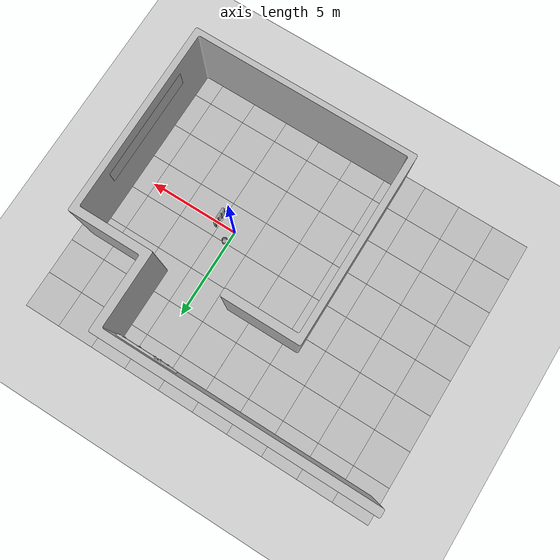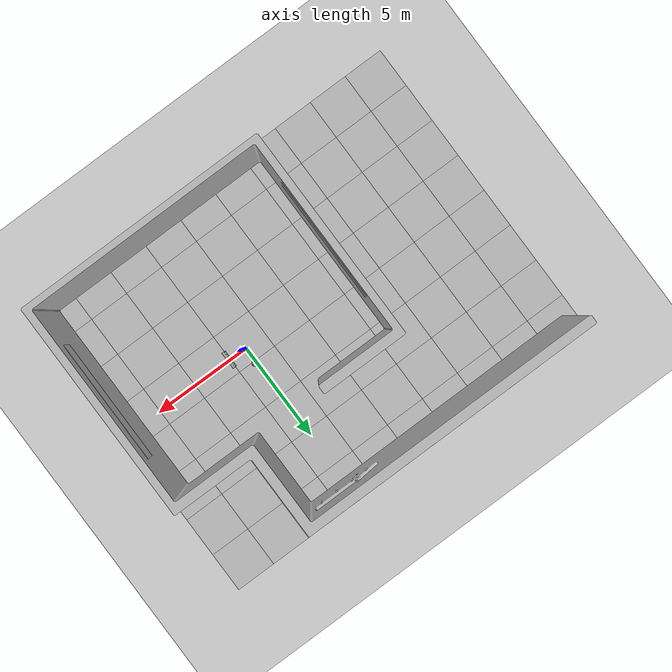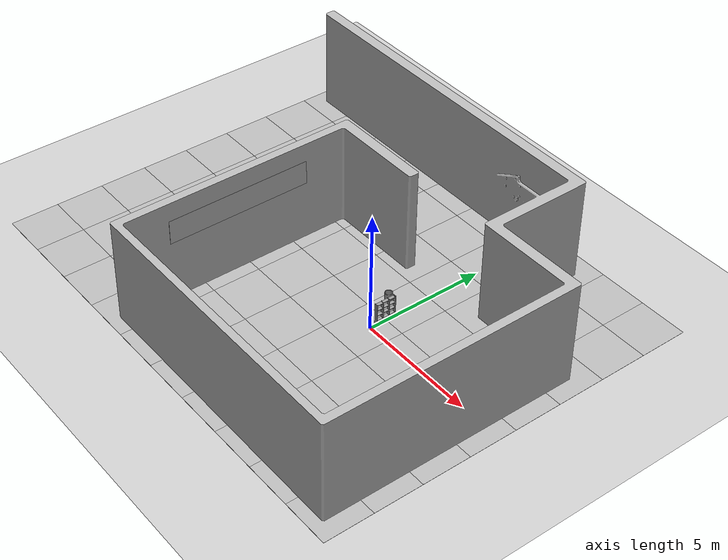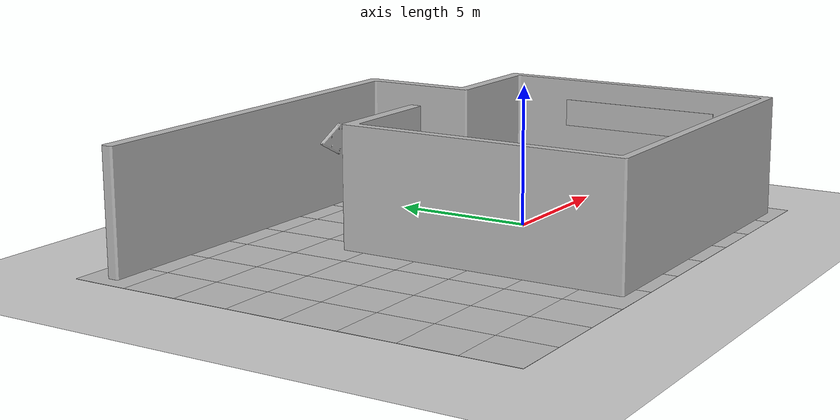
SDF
<sdf version="1.6">
 <world name="default">
  <light name="sun" type="directional">
   <pose>0 0 10 0 -0 0</pose>
   <diffuse>0.8 0.8 0.8 1</diffuse>
   <specular>0.1 0.1 0.1 1</specular>
   <attenuation>
    <range>1000</range>
    <constant>0.9</constant>
    <linear>0.01</linear>
    <quadratic>0.001</quadratic>
   </attenuation>
   <direction>-0.5 0.5 -1</direction>
  </light>
  <model name="ground_plane">
   <static>1</static>
   <link name="link">
    <collision name="collision">
     <geometry><plane><normal>0 0 1</normal><size>100 100</size></plane></geometry>
     <surface><friction><ode><mu>100</mu><mu2>50</mu2></ode></friction></surface>
    </collision>
    <visual name="visual">
     <cast_shadows>0</cast_shadows>
     <geometry><plane><normal>0 0 1</normal><size>100 100</size></plane></geometry>
     <material>
      <script><uri>file://media/materials/scripts/gazebo.material</uri><name>Gazebo/Grey</name></script>
     </material>
    </visual>
   </link>
  </model>
  <gravity>0 0 -9.8</gravity>
  <magnetic_field>6e-06 2.3e-05 -4.2e-05</magnetic_field>
  <atmosphere type="adiabatic"/>
  <physics name="default_physics" default="0" type="ode">
   <max_step_size>0.001</max_step_size>
   <real_time_factor>1</real_time_factor>
   <real_time_update_rate>1000</real_time_update_rate>
  </physics>
  <scene><ambient>0.4 0.4 0.4 1</ambient><background>0.7 0.7 0.7 1</background><shadows>1</shadows></scene>
  <spherical_coordinates>
   <surface_model>EARTH_WGS84</surface_model>
   <latitude_deg>0</latitude_deg>
   <longitude_deg>0</longitude_deg>
   <elevation>0</elevation>
   <heading_deg>0</heading_deg>
  </spherical_coordinates>
  <model name="kinematics_bin">
   <link name="link_0">
    <inertial>
     <mass>1</mass>
     <inertia>
      <ixx>0.166667</ixx>
      <ixy>0</ixy>
      <ixz>0</ixz>
      <iyy>0.166667</iyy>
      <iyz>0</iyz>
      <izz>0.166667</izz>
     </inertia>
    </inertial>
    <visual name="visual">
     <geometry>
      <mesh><uri>model://kinematics_bin/kinematics_bin.dae</uri><scale>0.3 0.3 0.3</scale></mesh>
     </geometry>
     <material>
      <lighting>1</lighting>
      <script><uri>file://media/materials/scripts/gazebo.material</uri><name>Gazebo/Grey</name></script>
      <ambient>0.3 0.3 0.3 1</ambient>
      <diffuse>0.7 0.7 0.7 1</diffuse>
      <specular>0.01 0.01 0.01 1</specular>
      <emissive>0 0 0 1</emissive>
      <shader type="vertex"><normal_map>__default__</normal_map></shader>
     </material>
    </visual>
    <collision name="collision">
     <geometry>
      <mesh><uri>/home/wang/.gazebo/models/kinematics_bin/kinematics_bin.dae</uri><scale>0.3 0.3 0.3</scale></mesh>
     </geometry>
     <surface>
      <friction>
       <ode><mu>1</mu><mu2>1</mu2><fdir1>0 0 0</fdir1><slip1>0</slip1><slip2>0</slip2></ode>
       <torsional>
        <coefficient>1</coefficient>
        <patch_radius>0</patch_radius>
        <surface_radius>0</surface_radius>
        <use_patch_radius>1</use_patch_radius>
        <ode><slip>0</slip></ode>
       </torsional>
      </friction>
      <bounce><restitution_coefficient>0</restitution_coefficient><threshold>1e+06</threshold></bounce>
      <contact>
       <collide_without_contact>0</collide_without_contact>
       <collide_without_contact_bitmask>1</collide_without_contact_bitmask>
       <collide_bitmask>1</collide_bitmask>
       <ode>
        <soft_cfm>0</soft_cfm>
        <soft_erp>0.2</soft_erp>
        <kp>1e+13</kp>
        <kd>1</kd>
        <max_vel>0.01</max_vel>
        <min_depth>0</min_depth>
       </ode>
       <bullet>
        <split_impulse>1</split_impulse>
        <split_impulse_penetration_threshold>-0.01</split_impulse_penetration_threshold>
        <soft_cfm>0</soft_cfm>
        <soft_erp>0.2</soft_erp>
        <kp>1e+13</kp>
        <kd>1</kd>
       </bullet>
      </contact>
     </surface>
    </collision>
   </link>
   <static>0</static>
   <pose>0 0.800004 0.969284 4e-06 -4e-06 -1.1e-05</pose>
  </model>
  <model name="kinematics_shelf">
   <link name="link_0">
    <inertial>
     <mass>5</mass>
     <inertia>
      <ixx>0.166667</ixx>
      <ixy>0</ixy>
      <ixz>0</ixz>
      <iyy>0.166667</iyy>
      <iyz>0</iyz>
      <izz>0.166667</izz>
     </inertia>
    </inertial>
    <visual name="visual">
     <geometry>
      <mesh><uri>model://kinematics_shelf/kinematics_shelf.dae</uri><scale>0.3 0.3 0.3</scale></mesh>
     </geometry>
     <material>
      <lighting>1</lighting>
      <script><uri>file://media/materials/scripts/gazebo.material</uri><name>Gazebo/Grey</name></script>
      <ambient>0.3 0.3 0.3 1</ambient>
      <diffuse>0.7 0.7 0.7 1</diffuse>
      <specular>0.01 0.01 0.01 1</specular>
      <emissive>0 0 0 1</emissive>
      <shader type="vertex"><normal_map>__default__</normal_map></shader>
     </material>
    </visual>
    <collision name="collision">
     <geometry>
      <mesh>
       <uri>/home/wang/.gazebo/models/kinematics_shelf/kinematics_shelf.dae</uri>
       <scale>0.3 0.3 0.3</scale>
      </mesh>
     </geometry>
     <surface>
      <friction>
       <ode><mu>1</mu><mu2>1</mu2><fdir1>0 0 0</fdir1><slip1>0</slip1><slip2>0</slip2></ode>
       <torsional>
        <coefficient>1</coefficient>
        <patch_radius>0</patch_radius>
        <surface_radius>0</surface_radius>
        <use_patch_radius>1</use_patch_radius>
        <ode><slip>0</slip></ode>
       </torsional>
      </friction>
      <bounce><restitution_coefficient>0</restitution_coefficient><threshold>1e+06</threshold></bounce>
      <contact>
       <collide_without_contact>0</collide_without_contact>
       <collide_without_contact_bitmask>1</collide_without_contact_bitmask>
       <collide_bitmask>1</collide_bitmask>
       <ode>
        <soft_cfm>0</soft_cfm>
        <soft_erp>0.2</soft_erp>
        <kp>1e+13</kp>
        <kd>1</kd>
        <max_vel>0.01</max_vel>
        <min_depth>0</min_depth>
       </ode>
       <bullet>
        <split_impulse>1</split_impulse>
        <split_impulse_penetration_threshold>-0.01</split_impulse_penetration_threshold>
        <soft_cfm>0</soft_cfm>
        <soft_erp>0.2</soft_erp>
        <kp>1e+13</kp>
        <kd>1</kd>
       </bullet>
      </contact>
     </surface>
    </collision>
   </link>
   <static>1</static>
   <pose>0.8 0 1.24386 0 -0 1.57078</pose>
  </model>
  <model name="Starting Pen">
   <static>1</static>
   <link name="link">
    <collision name="wall_01">
     <pose>-0 0 2.14 0 -0 0</pose>
     <geometry><box><size>12.15 0.31 4.28</size></box></geometry>
    </collision>
    <collision name="wall_02">
     <pose>-5.28 14.3205 2.14 0 -0 0</pose>
     <geometry><box><size>14.8 0.46 4.28</size></box></geometry>
    </collision>
    <collision name="wall_03">
     <pose>-5.91 5 2.14 0 -0 0</pose>
     <geometry><box><size>0.385 10.3 4.28</size></box></geometry>
    </collision>
    <collision name="wall_04">
     <pose>5.91 5.161 2.14 0 -0 0</pose>
     <geometry><box><size>0.385 10.66 4.28</size></box></geometry>
    </collision>
    <collision name="wall_05">
     <pose>3.9 10.285 2.14 0 -0 0</pose>
     <geometry><box><size>4.38 0.45 4.28</size></box></geometry>
    </collision>
    <collision name="wall_06">
     <pose>-4 9.95 2.14 0 -0 0</pose>
     <geometry><box><size>4.25 0.45 4.28</size></box></geometry>
    </collision>
    <collision name="wall_07">
     <pose>1.94 12.3 2.14 0 -0 0</pose>
     <geometry><box><size>0.45 4.5 4.28</size></box></geometry>
    </collision>
    <collision name="wall_arrow">
     <pose>-0.232 14.03 2.46 0 -0 0</pose>
     <geometry><box><size>3.33 0.12 1.16</size></box></geometry>
    </collision>
    <collision name="collision_floor">
     <pose>-3.21 7.355 0 0 -0 0</pose>
     <geometry><box><size>20 16 0.01</size></box></geometry>
     <surface><friction><ode><mu>100</mu><mu2>50</mu2></ode></friction></surface>
    </collision>
    <visual name="visual_osrf">
     <pose>-5.74 4.99 3 0 -0 0</pose>
     <geometry><box><size>0.01 6 1</size></box></geometry>
     <material>
      <script>
       <uri>model://starting_pen/materials/scripts</uri>
       <uri>model://starting_pen/materials/textures</uri>
       <name>StartingPen/OSRF</name>
      </script>
     </material>
    </visual>
    <visual name="visual_osrf_2">
     <pose>5.74 4.99 3 0 -0 0</pose>
     <geometry><box><size>0.01 6 1</size></box></geometry>
     <material>
      <script>
       <uri>model://starting_pen/materials/scripts</uri>
       <uri>model://starting_pen/materials/textures</uri>
       <name>StartingPen/OSRF</name>
      </script>
     </material>
    </visual>
    <visual name="visual">
     <geometry><mesh><uri>model://starting_pen/meshes/starting_pen.dae</uri></mesh></geometry>
    </visual>
    <visual name="visual_floor_0">
     <pose>-12.21 0.35 0 0 -0 0</pose>
     <geometry><box><size>2 2 0.01</size></box></geometry>
     <material>
      <script>
       <uri>model://starting_pen/materials/scripts</uri>
       <uri>model://starting_pen/materials/textures</uri>
       <name>StartingPen/Floor</name>
      </script>
     </material>
    </visual>
    <visual name="visual_floor_1">
     <pose>-10.21 0.35 0 0 -0 0</pose>
     <geometry><box><size>2 2 0.01</size></box></geometry>
     <material>
      <script>
       <uri>model://starting_pen/materials/scripts</uri>
       <uri>model://starting_pen/materials/textures</uri>
       <name>StartingPen/Floor</name>
      </script>
     </material>
    </visual>
    <visual name="visual_floor_2">
     <pose>-8.21 0.35 0 0 -0 0</pose>
     <geometry><box><size>2 2 0.01</size></box></geometry>
     <material>
      <script>
       <uri>model://starting_pen/materials/scripts</uri>
       <uri>model://starting_pen/materials/textures</uri>
       <name>StartingPen/Floor</name>
      </script>
     </material>
    </visual>
    <visual name="visual_floor_3">
     <pose>-6.21 0.35 0 0 -0 0</pose>
     <geometry><box><size>2 2 0.01</size></box></geometry>
     <material>
      <script>
       <uri>model://starting_pen/materials/scripts</uri>
       <uri>model://starting_pen/materials/textures</uri>
       <name>StartingPen/Floor</name>
      </script>
     </material>
    </visual>
    <visual name="visual_floor_4">
     <pose>-4.21 0.35 0 0 -0 0</pose>
     <geometry><box><size>2 2 0.01</size></box></geometry>
     <material>
      <script>
       <uri>model://starting_pen/materials/scripts</uri>
       <uri>model://starting_pen/materials/textures</uri>
       <name>StartingPen/Floor</name>
      </script>
     </material>
    </visual>
    <visual name="visual_floor_5">
     <pose>-2.21 0.35 0 0 -0 0</pose>
     <geometry><box><size>2 2 0.01</size></box></geometry>
     <material>
      <script>
       <uri>model://starting_pen/materials/scripts</uri>
       <uri>model://starting_pen/materials/textures</uri>
       <name>StartingPen/Floor</name>
      </script>
     </material>
    </visual>
    <visual name="visual_floor_6">
     <pose>-0.21 0.35 0 0 -0 0</pose>
     <geometry><box><size>2 2 0.01</size></box></geometry>
     <material>
      <script>
       <uri>model://starting_pen/materials/scripts</uri>
       <uri>model://starting_pen/materials/textures</uri>
       <name>StartingPen/Floor</name>
      </script>
     </material>
    </visual>
    <visual name="visual_floor_7">
     <pose>1.79 0.35 0 0 -0 1.5707</pose>
     <geometry><box><size>2 2 0.01</size></box></geometry>
     <material>
      <script>
       <uri>model://starting_pen/materials/scripts</uri>
       <uri>model://starting_pen/materials/textures</uri>
       <name>StartingPen/FloorStripped</name>
      </script>
     </material>
    </visual>
    <visual name="visual_floor_8">
     <pose>3.79 0.35 0 0 -0 0</pose>
     <geometry><box><size>2 2 0.01</size></box></geometry>
     <material>
      <script>
       <uri>model://starting_pen/materials/scripts</uri>
       <uri>model://starting_pen/materials/textures</uri>
       <name>StartingPen/Floor</name>
      </script>
     </material>
    </visual>
    <visual name="visual_floor_9">
     <pose>5.79 0.35 0 0 -0 0</pose>
     <geometry><box><size>2 2 0.01</size></box></geometry>
     <material>
      <script>
       <uri>model://starting_pen/materials/scripts</uri>
       <uri>model://starting_pen/materials/textures</uri>
       <name>StartingPen/Floor</name>
      </script>
     </material>
    </visual>
    <visual name="visual_floor_10">
     <pose>-12.21 2.35 0 0 -0 1.5707</pose>
     <geometry><box><size>2 2 0.01</size></box></geometry>
     <material>
      <script>
       <uri>model://starting_pen/materials/scripts</uri>
       <uri>model://starting_pen/materials/textures</uri>
       <name>StartingPen/FloorStripped</name>
      </script>
     </material>
    </visual>
    <visual name="visual_floor_11">
     <pose>-10.21 2.35 0 0 -0 0</pose>
     <geometry><box><size>2 2 0.01</size></box></geometry>
     <material>
      <script>
       <uri>model://starting_pen/materials/scripts</uri>
       <uri>model://starting_pen/materials/textures</uri>
       <name>StartingPen/Floor</name>
      </script>
     </material>
    </visual>
    <visual name="visual_floor_12">
     <pose>-8.21 2.35 0 0 -0 0</pose>
     <geometry><box><size>2 2 0.01</size></box></geometry>
     <material>
      <script>
       <uri>model://starting_pen/materials/scripts</uri>
       <uri>model://starting_pen/materials/textures</uri>
       <name>StartingPen/Floor</name>
      </script>
     </material>
    </visual>
    <visual name="visual_floor_13">
     <pose>-6.21 2.35 0 0 -0 0</pose>
     <geometry><box><size>2 2 0.01</size></box></geometry>
     <material>
      <script>
       <uri>model://starting_pen/materials/scripts</uri>
       <uri>model://starting_pen/materials/textures</uri>
       <name>StartingPen/Floor</name>
      </script>
     </material>
    </visual>
    <visual name="visual_floor_14">
     <pose>-4.21 2.35 0 0 -0 0</pose>
     <geometry><box><size>2 2 0.01</size></box></geometry>
     <material>
      <script>
       <uri>model://starting_pen/materials/scripts</uri>
       <uri>model://starting_pen/materials/textures</uri>
       <name>StartingPen/Floor</name>
      </script>
     </material>
    </visual>
    <visual name="visual_floor_15">
     <pose>-2.21 2.35 0 0 -0 0</pose>
     <geometry><box><size>2 2 0.01</size></box></geometry>
     <material>
      <script>
       <uri>model://starting_pen/materials/scripts</uri>
       <uri>model://starting_pen/materials/textures</uri>
       <name>StartingPen/Floor</name>
      </script>
     </material>
    </visual>
    <visual name="visual_floor_16">
     <pose>-0.21 2.35 0 0 -0 1.5707</pose>
     <geometry><box><size>2 2 0.01</size></box></geometry>
     <material>
      <script>
       <uri>model://starting_pen/materials/scripts</uri>
       <uri>model://starting_pen/materials/textures</uri>
       <name>StartingPen/FloorStripped</name>
      </script>
     </material>
    </visual>
    <visual name="visual_floor_17">
     <pose>1.79 2.35 0 0 -0 1.5707</pose>
     <geometry><box><size>2 2 0.01</size></box></geometry>
     <material>
      <script>
       <uri>model://starting_pen/materials/scripts</uri>
       <uri>model://starting_pen/materials/textures</uri>
       <name>StartingPen/Floor</name>
      </script>
     </material>
    </visual>
    <visual name="visual_floor_18">
     <pose>3.79 2.35 0 0 -0 0</pose>
     <geometry><box><size>2 2 0.01</size></box></geometry>
     <material>
      <script>
       <uri>model://starting_pen/materials/scripts</uri>
       <uri>model://starting_pen/materials/textures</uri>
       <name>StartingPen/Floor</name>
      </script>
     </material>
    </visual>
    <visual name="visual_floor_19">
     <pose>5.79 2.35 0 0 -0 0</pose>
     <geometry><box><size>2 2 0.01</size></box></geometry>
     <material>
      <script>
       <uri>model://starting_pen/materials/scripts</uri>
       <uri>model://starting_pen/materials/textures</uri>
       <name>StartingPen/Floor</name>
      </script>
     </material>
    </visual>
    <visual name="visual_floor_20">
     <pose>-12.21 4.35 0 0 -0 0</pose>
     <geometry><box><size>2 2 0.01</size></box></geometry>
     <material>
      <script>
       <uri>model://starting_pen/materials/scripts</uri>
       <uri>model://starting_pen/materials/textures</uri>
       <name>StartingPen/Floor</name>
      </script>
     </material>
    </visual>
    <visual name="visual_floor_21">
     <pose>-10.21 4.35 0 0 -0 0</pose>
     <geometry><box><size>2 2 0.01</size></box></geometry>
     <material>
      <script>
       <uri>model://starting_pen/materials/scripts</uri>
       <uri>model://starting_pen/materials/textures</uri>
       <name>StartingPen/Floor</name>
      </script>
     </material>
    </visual>
    <visual name="visual_floor_22">
     <pose>-8.21 4.35 0 0 -0 1.5707</pose>
     <geometry><box><size>2 2 0.01</size></box></geometry>
     <material>
      <script>
       <uri>model://starting_pen/materials/scripts</uri>
       <uri>model://starting_pen/materials/textures</uri>
       <name>StartingPen/FloorStripped</name>
      </script>
     </material>
    </visual>
    <visual name="visual_floor_23">
     <pose>-6.21 4.35 0 0 -0 0</pose>
     <geometry><box><size>2 2 0.01</size></box></geometry>
     <material>
      <script>
       <uri>model://starting_pen/materials/scripts</uri>
       <uri>model://starting_pen/materials/textures</uri>
       <name>StartingPen/Floor</name>
      </script>
     </material>
    </visual>
    <visual name="visual_floor_24">
     <pose>-4.21 4.35 0 0 -0 0</pose>
     <geometry><box><size>2 2 0.01</size></box></geometry>
     <material>
      <script>
       <uri>model://starting_pen/materials/scripts</uri>
       <uri>model://starting_pen/materials/textures</uri>
       <name>StartingPen/Floor</name>
      </script>
     </material>
    </visual>
    <visual name="visual_floor_25">
     <pose>-2.21 4.35 0 0 -0 0</pose>
     <geometry><box><size>2 2 0.01</size></box></geometry>
     <material>
      <script>
       <uri>model://starting_pen/materials/scripts</uri>
       <uri>model://starting_pen/materials/textures</uri>
       <name>StartingPen/Floor</name>
      </script>
     </material>
    </visual>
    <visual name="visual_floor_26">
     <pose>-0.21 4.35 0 0 -0 0</pose>
     <geometry><box><size>2 2 0.01</size></box></geometry>
     <material>
      <script>
       <uri>model://starting_pen/materials/scripts</uri>
       <uri>model://starting_pen/materials/textures</uri>
       <name>StartingPen/Floor</name>
      </script>
     </material>
    </visual>
    <visual name="visual_floor_27">
     <pose>1.79 4.35 0 0 -0 0</pose>
     <geometry><box><size>2 2 0.01</size></box></geometry>
     <material>
      <script>
       <uri>model://starting_pen/materials/scripts</uri>
       <uri>model://starting_pen/materials/textures</uri>
       <name>StartingPen/Floor</name>
      </script>
     </material>
    </visual>
    <visual name="visual_floor_28">
     <pose>3.79 4.35 0 0 -0 0</pose>
     <geometry><box><size>2 2 0.01</size></box></geometry>
     <material>
      <script>
       <uri>model://starting_pen/materials/scripts</uri>
       <uri>model://starting_pen/materials/textures</uri>
       <name>StartingPen/Floor</name>
      </script>
     </material>
    </visual>
    <visual name="visual_floor_29">
     <pose>5.79 4.35 0 0 -0 1.5707</pose>
     <geometry><box><size>2 2 0.01</size></box></geometry>
     <material>
      <script>
       <uri>model://starting_pen/materials/scripts</uri>
       <uri>model://starting_pen/materials/textures</uri>
       <name>StartingPen/FloorStripped</name>
      </script>
     </material>
    </visual>
    <visual name="visual_floor_30">
     <pose>-12.21 6.35 0 0 -0 0</pose>
     <geometry><box><size>2 2 0.01</size></box></geometry>
     <material>
      <script>
       <uri>model://starting_pen/materials/scripts</uri>
       <uri>model://starting_pen/materials/textures</uri>
       <name>StartingPen/Floor</name>
      </script>
     </material>
    </visual>
    <visual name="visual_floor_31">
     <pose>-10.21 6.35 0 0 -0 0</pose>
     <geometry><box><size>2 2 0.01</size></box></geometry>
     <material>
      <script>
       <uri>model://starting_pen/materials/scripts</uri>
       <uri>model://starting_pen/materials/textures</uri>
       <name>StartingPen/Floor</name>
      </script>
     </material>
    </visual>
    <visual name="visual_floor_32">
     <pose>-8.21 6.35 0 0 -0 0</pose>
     <geometry><box><size>2 2 0.01</size></box></geometry>
     <material>
      <script>
       <uri>model://starting_pen/materials/scripts</uri>
       <uri>model://starting_pen/materials/textures</uri>
       <name>StartingPen/Floor</name>
      </script>
     </material>
    </visual>
    <visual name="visual_floor_33">
     <pose>-6.21 6.35 0 0 -0 1.5707</pose>
     <geometry><box><size>2 2 0.01</size></box></geometry>
     <material>
      <script>
       <uri>model://starting_pen/materials/scripts</uri>
       <uri>model://starting_pen/materials/textures</uri>
       <name>StartingPen/FloorStripped</name>
      </script>
     </material>
    </visual>
    <visual name="visual_floor_34">
     <pose>-4.21 6.35 0 0 -0 0</pose>
     <geometry><box><size>2 2 0.01</size></box></geometry>
     <material>
      <script>
       <uri>model://starting_pen/materials/scripts</uri>
       <uri>model://starting_pen/materials/textures</uri>
       <name>StartingPen/Floor</name>
      </script>
     </material>
    </visual>
    <visual name="visual_floor_35">
     <pose>-2.21 6.35 0 0 -0 1.5707</pose>
     <geometry><box><size>2 2 0.01</size></box></geometry>
     <material>
      <script>
       <uri>model://starting_pen/materials/scripts</uri>
       <uri>model://starting_pen/materials/textures</uri>
       <name>StartingPen/FloorStripped</name>
      </script>
     </material>
    </visual>
    <visual name="visual_floor_36">
     <pose>-0.21 6.35 0 0 -0 0</pose>
     <geometry><box><size>2 2 0.01</size></box></geometry>
     <material>
      <script>
       <uri>model://starting_pen/materials/scripts</uri>
       <uri>model://starting_pen/materials/textures</uri>
       <name>StartingPen/Floor</name>
      </script>
     </material>
    </visual>
    <visual name="visual_floor_37">
     <pose>1.79 6.35 0 0 -0 0</pose>
     <geometry><box><size>2 2 0.01</size></box></geometry>
     <material>
      <script>
       <uri>model://starting_pen/materials/scripts</uri>
       <uri>model://starting_pen/materials/textures</uri>
       <name>StartingPen/Floor</name>
      </script>
     </material>
    </visual>
    <visual name="visual_floor_38">
     <pose>3.79 6.35 0 0 -0 0</pose>
     <geometry><box><size>2 2 0.01</size></box></geometry>
     <material>
      <script>
       <uri>model://starting_pen/materials/scripts</uri>
       <uri>model://starting_pen/materials/textures</uri>
       <name>StartingPen/Floor</name>
      </script>
     </material>
    </visual>
    <visual name="visual_floor_39">
     <pose>5.79 6.35 0 0 -0 0</pose>
     <geometry><box><size>2 2 0.01</size></box></geometry>
     <material>
      <script>
       <uri>model://starting_pen/materials/scripts</uri>
       <uri>model://starting_pen/materials/textures</uri>
       <name>StartingPen/Floor</name>
      </script>
     </material>
    </visual>
    <visual name="visual_floor_40">
     <pose>-12.21 8.35 0 0 -0 0</pose>
     <geometry><box><size>2 2 0.01</size></box></geometry>
     <material>
      <script>
       <uri>model://starting_pen/materials/scripts</uri>
       <uri>model://starting_pen/materials/textures</uri>
       <name>StartingPen/Floor</name>
      </script>
     </material>
    </visual>
    <visual name="visual_floor_41">
     <pose>-10.21 8.35 0 0 -0 0</pose>
     <geometry><box><size>2 2 0.01</size></box></geometry>
     <material>
      <script>
       <uri>model://starting_pen/materials/scripts</uri>
       <uri>model://starting_pen/materials/textures</uri>
       <name>StartingPen/Floor</name>
      </script>
     </material>
    </visual>
    <visual name="visual_floor_42">
     <pose>-8.21 8.35 0 0 -0 1.5707</pose>
     <geometry><box><size>2 2 0.01</size></box></geometry>
     <material>
      <script>
       <uri>model://starting_pen/materials/scripts</uri>
       <uri>model://starting_pen/materials/textures</uri>
       <name>StartingPen/FloorStripped</name>
      </script>
     </material>
    </visual>
    <visual name="visual_floor_43">
     <pose>-6.21 8.35 0 0 -0 0</pose>
     <geometry><box><size>2 2 0.01</size></box></geometry>
     <material>
      <script>
       <uri>model://starting_pen/materials/scripts</uri>
       <uri>model://starting_pen/materials/textures</uri>
       <name>StartingPen/Floor</name>
      </script>
     </material>
    </visual>
    <visual name="visual_floor_44">
     <pose>-4.21 8.35 0 0 -0 0</pose>
     <geometry><box><size>2 2 0.01</size></box></geometry>
     <material>
      <script>
       <uri>model://starting_pen/materials/scripts</uri>
       <uri>model://starting_pen/materials/textures</uri>
       <name>StartingPen/Floor</name>
      </script>
     </material>
    </visual>
    <visual name="visual_floor_45">
     <pose>-2.21 8.35 0 0 -0 0</pose>
     <geometry><box><size>2 2 0.01</size></box></geometry>
     <material>
      <script>
       <uri>model://starting_pen/materials/scripts</uri>
       <uri>model://starting_pen/materials/textures</uri>
       <name>StartingPen/Floor</name>
      </script>
     </material>
    </visual>
    <visual name="visual_floor_46">
     <pose>-0.21 8.35 0 0 -0 1.5707</pose>
     <geometry><box><size>2 2 0.01</size></box></geometry>
     <material>
      <script>
       <uri>model://starting_pen/materials/scripts</uri>
       <uri>model://starting_pen/materials/textures</uri>
       <name>StartingPen/FloorStripped</name>
      </script>
     </material>
    </visual>
    <visual name="visual_floor_47">
     <pose>1.79 8.35 0 0 -0 0</pose>
     <geometry><box><size>2 2 0.01</size></box></geometry>
     <material>
      <script>
       <uri>model://starting_pen/materials/scripts</uri>
       <uri>model://starting_pen/materials/textures</uri>
       <name>StartingPen/Floor</name>
      </script>
     </material>
    </visual>
    <visual name="visual_floor_48">
     <pose>3.79 8.35 0 0 -0 0</pose>
     <geometry><box><size>2 2 0.01</size></box></geometry>
     <material>
      <script>
       <uri>model://starting_pen/materials/scripts</uri>
       <uri>model://starting_pen/materials/textures</uri>
       <name>StartingPen/Floor</name>
      </script>
     </material>
    </visual>
    <visual name="visual_floor_49">
     <pose>5.79 8.35 0 0 -0 0</pose>
     <geometry><box><size>2 2 0.01</size></box></geometry>
     <material>
      <script>
       <uri>model://starting_pen/materials/scripts</uri>
       <uri>model://starting_pen/materials/textures</uri>
       <name>StartingPen/Floor</name>
      </script>
     </material>
    </visual>
    <visual name="visual_floor_50">
     <pose>-12.21 10.35 0 0 -0 0</pose>
     <geometry><box><size>2 2 0.01</size></box></geometry>
     <material>
      <script>
       <uri>model://starting_pen/materials/scripts</uri>
       <uri>model://starting_pen/materials/textures</uri>
       <name>StartingPen/Floor</name>
      </script>
     </material>
    </visual>
    <visual name="visual_floor_51">
     <pose>-10.21 10.35 0 0 -0 0</pose>
     <geometry><box><size>2 2 0.01</size></box></geometry>
     <material>
      <script>
       <uri>model://starting_pen/materials/scripts</uri>
       <uri>model://starting_pen/materials/textures</uri>
       <name>StartingPen/Floor</name>
      </script>
     </material>
    </visual>
    <visual name="visual_floor_52">
     <pose>-8.21 10.35 0 0 -0 0</pose>
     <geometry><box><size>2 2 0.01</size></box></geometry>
     <material>
      <script>
       <uri>model://starting_pen/materials/scripts</uri>
       <uri>model://starting_pen/materials/textures</uri>
       <name>StartingPen/Floor</name>
      </script>
     </material>
    </visual>
    <visual name="visual_floor_53">
     <pose>-6.21 10.35 0 0 -0 1.5707</pose>
     <geometry><box><size>2 2 0.01</size></box></geometry>
     <material>
      <script>
       <uri>model://starting_pen/materials/scripts</uri>
       <uri>model://starting_pen/materials/textures</uri>
       <name>StartingPen/FloorStripped</name>
      </script>
     </material>
    </visual>
    <visual name="visual_floor_54">
     <pose>-4.21 10.35 0 0 -0 0</pose>
     <geometry><box><size>2 2 0.01</size></box></geometry>
     <material>
      <script>
       <uri>model://starting_pen/materials/scripts</uri>
       <uri>model://starting_pen/materials/textures</uri>
       <name>StartingPen/Floor</name>
      </script>
     </material>
    </visual>
    <visual name="visual_floor_55">
     <pose>-2.21 10.35 0 0 -0 0</pose>
     <geometry><box><size>2 2 0.01</size></box></geometry>
     <material>
      <script>
       <uri>model://starting_pen/materials/scripts</uri>
       <uri>model://starting_pen/materials/textures</uri>
       <name>StartingPen/Floor</name>
      </script>
     </material>
    </visual>
    <visual name="visual_floor_56">
     <pose>-0.21 10.35 0 0 -0 0</pose>
     <geometry><box><size>2 2 0.01</size></box></geometry>
     <material>
      <script>
       <uri>model://starting_pen/materials/scripts</uri>
       <uri>model://starting_pen/materials/textures</uri>
       <name>StartingPen/Floor</name>
      </script>
     </material>
    </visual>
    <visual name="visual_floor_57">
     <pose>1.79 10.35 0 0 -0 0</pose>
     <geometry><box><size>2 2 0.01</size></box></geometry>
     <material>
      <script>
       <uri>model://starting_pen/materials/scripts</uri>
       <uri>model://starting_pen/materials/textures</uri>
       <name>StartingPen/Floor</name>
      </script>
     </material>
    </visual>
    <visual name="visual_floor_58">
     <pose>3.79 10.35 0 0 -0 0</pose>
     <geometry><box><size>2 2 0.01</size></box></geometry>
     <material>
      <script>
       <uri>model://starting_pen/materials/scripts</uri>
       <uri>model://starting_pen/materials/textures</uri>
       <name>StartingPen/Floor</name>
      </script>
     </material>
    </visual>
    <visual name="visual_floor_59">
     <pose>5.79 10.35 0 0 -0 0</pose>
     <geometry><box><size>2 2 0.01</size></box></geometry>
     <material>
      <script>
       <uri>model://starting_pen/materials/scripts</uri>
       <uri>model://starting_pen/materials/textures</uri>
       <name>StartingPen/Floor</name>
      </script>
     </material>
    </visual>
    <visual name="visual_floor_60">
     <pose>-12.21 12.35 0 0 -0 1.5707</pose>
     <geometry><box><size>2 2 0.01</size></box></geometry>
     <material>
      <script>
       <uri>model://starting_pen/materials/scripts</uri>
       <uri>model://starting_pen/materials/textures</uri>
       <name>StartingPen/FloorStripped</name>
      </script>
     </material>
    </visual>
    <visual name="visual_floor_61">
     <pose>-10.21 12.35 0 0 -0 0</pose>
     <geometry><box><size>2 2 0.01</size></box></geometry>
     <material>
      <script>
       <uri>model://starting_pen/materials/scripts</uri>
       <uri>model://starting_pen/materials/textures</uri>
       <name>StartingPen/Floor</name>
      </script>
     </material>
    </visual>
    <visual name="visual_floor_62">
     <pose>-8.21 12.35 0 0 -0 0</pose>
     <geometry><box><size>2 2 0.01</size></box></geometry>
     <material>
      <script>
       <uri>model://starting_pen/materials/scripts</uri>
       <uri>model://starting_pen/materials/textures</uri>
       <name>StartingPen/Floor</name>
      </script>
     </material>
    </visual>
    <visual name="visual_floor_63">
     <pose>-6.21 12.35 0 0 -0 0</pose>
     <geometry><box><size>2 2 0.01</size></box></geometry>
     <material>
      <script>
       <uri>model://starting_pen/materials/scripts</uri>
       <uri>model://starting_pen/materials/textures</uri>
       <name>StartingPen/Floor</name>
      </script>
     </material>
    </visual>
    <visual name="visual_floor_64">
     <pose>-4.21 12.35 0 0 -0 0</pose>
     <geometry><box><size>2 2 0.01</size></box></geometry>
     <material>
      <script>
       <uri>model://starting_pen/materials/scripts</uri>
       <uri>model://starting_pen/materials/textures</uri>
       <name>StartingPen/Floor</name>
      </script>
     </material>
    </visual>
    <visual name="visual_floor_65">
     <pose>-2.21 12.35 0 0 -0 1.5707</pose>
     <geometry><box><size>2 2 0.01</size></box></geometry>
     <material>
      <script>
       <uri>model://starting_pen/materials/scripts</uri>
       <uri>model://starting_pen/materials/textures</uri>
       <name>StartingPen/FloorStripped</name>
      </script>
     </material>
    </visual>
    <visual name="visual_floor_66">
     <pose>-0.21 12.35 0 0 -0 0</pose>
     <geometry><box><size>2 2 0.01</size></box></geometry>
     <material>
      <script>
       <uri>model://starting_pen/materials/scripts</uri>
       <uri>model://starting_pen/materials/textures</uri>
       <name>StartingPen/Floor</name>
      </script>
     </material>
    </visual>
    <visual name="visual_floor_67">
     <pose>1.79 12.35 0 0 -0 0</pose>
     <geometry><box><size>2 2 0.01</size></box></geometry>
     <material>
      <script>
       <uri>model://starting_pen/materials/scripts</uri>
       <uri>model://starting_pen/materials/textures</uri>
       <name>StartingPen/Floor</name>
      </script>
     </material>
    </visual>
    <visual name="visual_floor_68">
     <pose>3.79 12.35 0 0 -0 0</pose>
     <geometry><box><size>2 2 0.01</size></box></geometry>
     <material>
      <script>
       <uri>model://starting_pen/materials/scripts</uri>
       <uri>model://starting_pen/materials/textures</uri>
       <name>StartingPen/Floor</name>
      </script>
     </material>
    </visual>
    <visual name="visual_floor_69">
     <pose>5.79 12.35 0 0 -0 0</pose>
     <geometry><box><size>2 2 0.01</size></box></geometry>
     <material>
      <script>
       <uri>model://starting_pen/materials/scripts</uri>
       <uri>model://starting_pen/materials/textures</uri>
       <name>StartingPen/Floor</name>
      </script>
     </material>
    </visual>
    <visual name="visual_floor_70">
     <pose>-12.21 14.35 0 0 -0 0</pose>
     <geometry><box><size>2 2 0.01</size></box></geometry>
     <material>
      <script>
       <uri>model://starting_pen/materials/scripts</uri>
       <uri>model://starting_pen/materials/textures</uri>
       <name>StartingPen/Floor</name>
      </script>
     </material>
    </visual>
    <visual name="visual_floor_71">
     <pose>-10.21 14.35 0 0 -0 0</pose>
     <geometry><box><size>2 2 0.01</size></box></geometry>
     <material>
      <script>
       <uri>model://starting_pen/materials/scripts</uri>
       <uri>model://starting_pen/materials/textures</uri>
       <name>StartingPen/Floor</name>
      </script>
     </material>
    </visual>
    <visual name="visual_floor_72">
     <pose>-8.21 14.35 0 0 -0 0</pose>
     <geometry><box><size>2 2 0.01</size></box></geometry>
     <material>
      <script>
       <uri>model://starting_pen/materials/scripts</uri>
       <uri>model://starting_pen/materials/textures</uri>
       <name>StartingPen/Floor</name>
      </script>
     </material>
    </visual>
    <visual name="visual_floor_73">
     <pose>-6.21 14.35 0 0 -0 0</pose>
     <geometry><box><size>2 2 0.01</size></box></geometry>
     <material>
      <script>
       <uri>model://starting_pen/materials/scripts</uri>
       <uri>model://starting_pen/materials/textures</uri>
       <name>StartingPen/Floor</name>
      </script>
     </material>
    </visual>
    <visual name="visual_floor_74">
     <pose>-4.21 14.35 0 0 -0 1.5707</pose>
     <geometry><box><size>2 2 0.01</size></box></geometry>
     <material>
      <script>
       <uri>model://starting_pen/materials/scripts</uri>
       <uri>model://starting_pen/materials/textures</uri>
       <name>StartingPen/FloorStripped</name>
      </script>
     </material>
    </visual>
    <visual name="visual_floor_75">
     <pose>-2.21 14.35 0 0 -0 1.5707</pose>
     <geometry><box><size>2 2 0.01</size></box></geometry>
     <material>
      <script>
       <uri>model://starting_pen/materials/scripts</uri>
       <uri>model://starting_pen/materials/textures</uri>
       <name>StartingPen/Floor</name>
      </script>
     </material>
    </visual>
    <visual name="visual_floor_76">
     <pose>-0.21 14.35 0 0 -0 0</pose>
     <geometry><box><size>2 2 0.01</size></box></geometry>
     <material>
      <script>
       <uri>model://starting_pen/materials/scripts</uri>
       <uri>model://starting_pen/materials/textures</uri>
       <name>StartingPen/Floor</name>
      </script>
     </material>
    </visual>
    <visual name="visual_floor_77">
     <pose>1.79 14.35 0 0 -0 0</pose>
     <geometry><box><size>2 2 0.01</size></box></geometry>
     <material>
      <script>
       <uri>model://starting_pen/materials/scripts</uri>
       <uri>model://starting_pen/materials/textures</uri>
       <name>StartingPen/Floor</name>
      </script>
     </material>
    </visual>
    <visual name="visual_floor_78">
     <pose>3.79 14.35 0 0 -0 0</pose>
     <geometry><box><size>2 2 0.01</size></box></geometry>
     <material>
      <script>
       <uri>model://starting_pen/materials/scripts</uri>
       <uri>model://starting_pen/materials/textures</uri>
       <name>StartingPen/FloorStripped</name>
      </script>
     </material>
    </visual>
    <visual name="visual_floor_79">
     <pose>5.79 14.35 0 0 -0 0</pose>
     <geometry><box><size>2 2 0.01</size></box></geometry>
     <material>
      <script>
       <uri>model://starting_pen/materials/scripts</uri>
       <uri>model://starting_pen/materials/textures</uri>
       <name>StartingPen/Floor</name>
      </script>
     </material>
    </visual>
   </link>
   <pose>0.112036 -6.63359 0 0 -0 0</pose>
  </model>
 </world>
</sdf>
